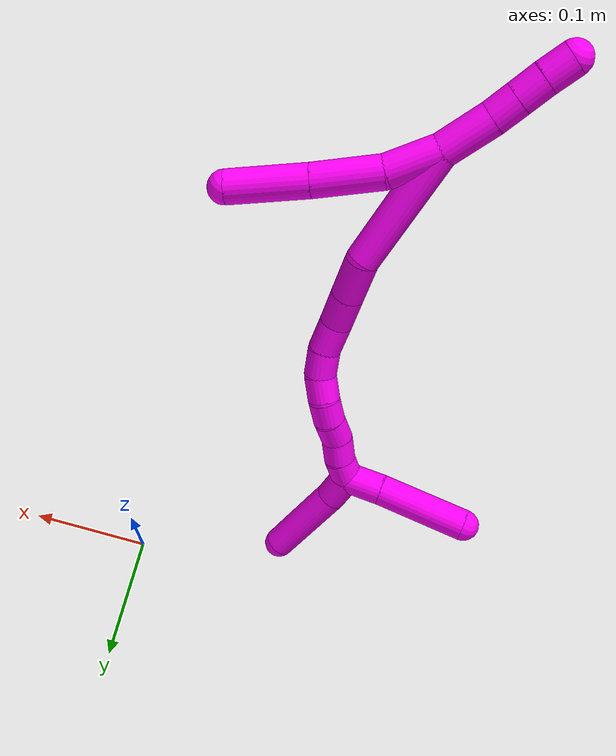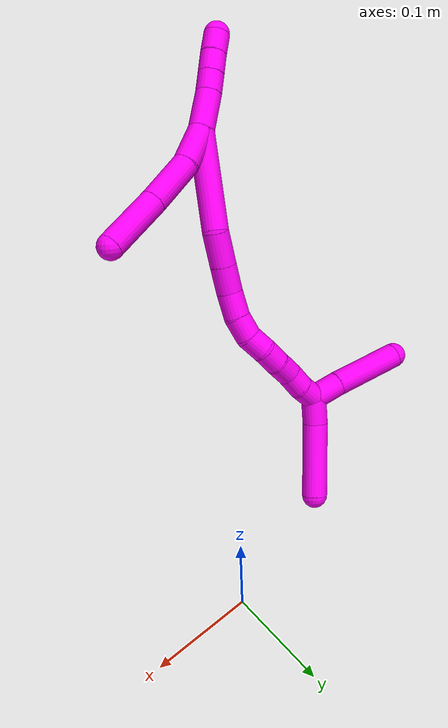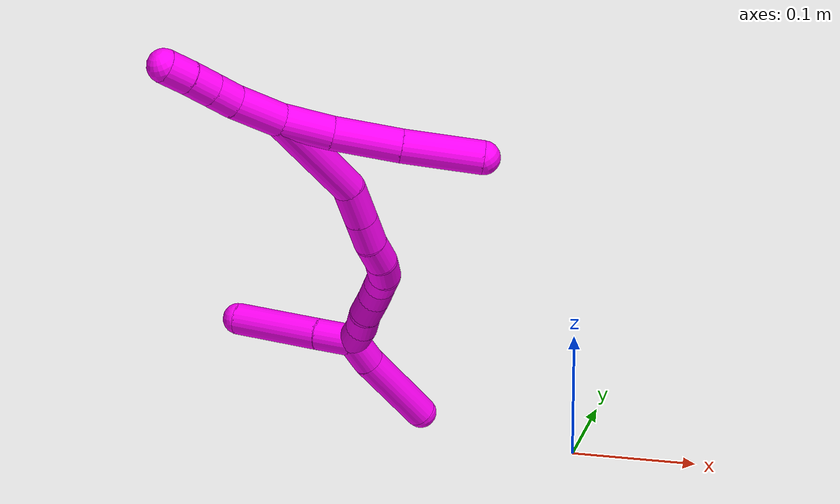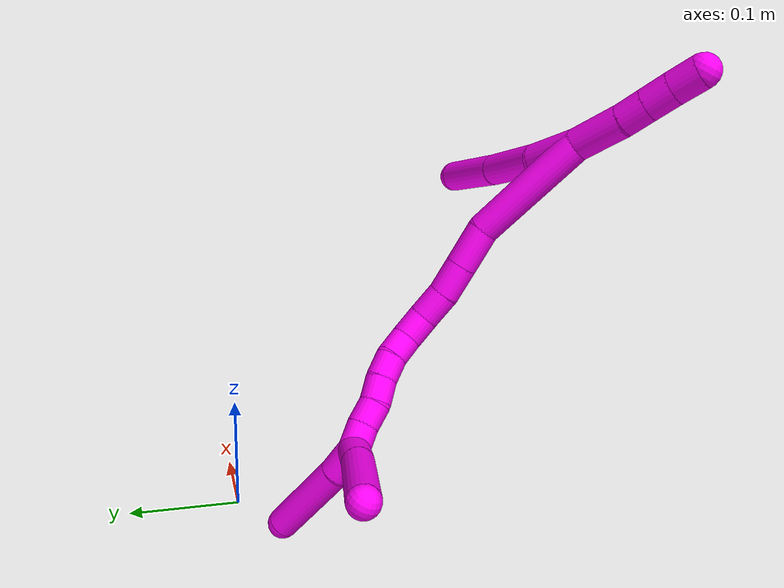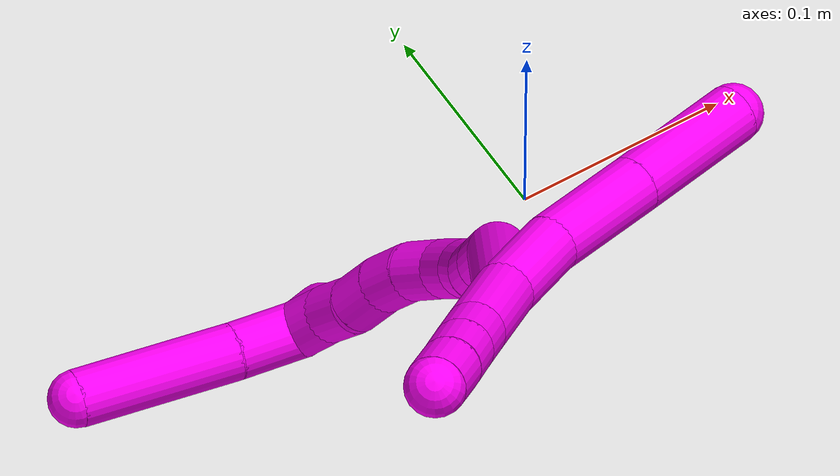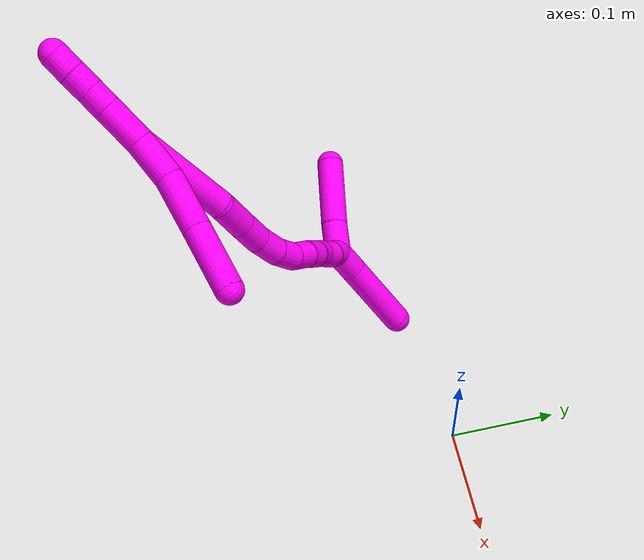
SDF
<sdf version="1.7">
 <world name="default">
  <model name="10">
   <static>0</static>
   <link name="10">
    <collision name="collision-cylinder-e_1_2_8">
     <pose>0.014163 0.003988 -0.012894 -2.84161 0.809479 -2.4633</pose>
     <geometry><cylinder><radius>0.0125</radius><length>0.039128</length></cylinder></geometry>
     <surface>
      <friction><ode><mu>1.16</mu><mu2>1.16</mu2><slip1>0</slip1><slip2>0</slip2></ode></friction>
      <contact><ode><kp>1e+06</kp><kd>1</kd><max_vel>0</max_vel><min_depth>0.001</min_depth></ode></contact>
     </surface>
    </collision>
    <visual name="visual-cylinder-e_1_2_8">
     <pose>0.014163 0.003988 -0.012894 -2.84161 0.809479 -2.4633</pose>
     <geometry><cylinder><radius>0.0125</radius><length>0.039128</length></cylinder></geometry>
     <material><ambient>1 0 0.964706 1</ambient></material>
    </visual>
    <collision name="collision-cylinder-e_2_8_9">
     <pose>0.050202 0.009612 -0.03893 -3.01778 1.02642 -2.9225</pose>
     <geometry><cylinder><radius>0.0125</radius><length>0.051144</length></cylinder></geometry>
     <surface>
      <friction><ode><mu>1.16</mu><mu2>1.16</mu2><slip1>0</slip1><slip2>0</slip2></ode></friction>
      <contact><ode><kp>1e+06</kp><kd>1</kd><max_vel>0</max_vel><min_depth>0.001</min_depth></ode></contact>
     </surface>
    </collision>
    <visual name="visual-cylinder-e_2_8_9">
     <pose>0.050202 0.009612 -0.03893 -3.01778 1.02642 -2.9225</pose>
     <geometry><cylinder><radius>0.0125</radius><length>0.051144</length></cylinder></geometry>
     <material><ambient>1 0 0.964706 1</ambient></material>
    </visual>
    <collision name="collision-cylinder-e_3_9_6">
     <pose>0.098362 0.013226 -0.06611 -3.00162 1.07618 -2.90775</pose>
     <geometry><cylinder><radius>0.0125</radius><length>0.059727</length></cylinder></geometry>
     <surface>
      <friction><ode><mu>1.16</mu><mu2>1.16</mu2><slip1>0</slip1><slip2>0</slip2></ode></friction>
      <contact><ode><kp>1e+06</kp><kd>1</kd><max_vel>0</max_vel><min_depth>0.001</min_depth></ode></contact>
     </surface>
    </collision>
    <visual name="visual-cylinder-e_3_9_6">
     <pose>0.098362 0.013226 -0.06611 -3.00162 1.07618 -2.90775</pose>
     <geometry><cylinder><radius>0.0125</radius><length>0.059727</length></cylinder></geometry>
     <material><ambient>1 0 0.964706 1</ambient></material>
    </visual>
    <collision name="collision-cylinder-e_1_2_10">
     <pose>-0.010663 -0.005025 0.015326 0.316849 -0.584166 -0.096003</pose>
     <geometry><cylinder><radius>0.0125</radius><length>0.038669</length></cylinder></geometry>
     <surface>
      <friction><ode><mu>1.16</mu><mu2>1.16</mu2><slip1>0</slip1><slip2>0</slip2></ode></friction>
      <contact><ode><kp>1e+06</kp><kd>1</kd><max_vel>0</max_vel><min_depth>0.001</min_depth></ode></contact>
     </surface>
    </collision>
    <visual name="visual-cylinder-e_1_2_10">
     <pose>-0.010663 -0.005025 0.015326 0.316849 -0.584166 -0.096003</pose>
     <geometry><cylinder><radius>0.0125</radius><length>0.038669</length></cylinder></geometry>
     <material><ambient>1 0 0.964706 1</ambient></material>
    </visual>
    <collision name="collision-cylinder-e_2_10_11">
     <pose>-0.026018 -0.012497 0.039181 0.279364 -0.486384 -0.069737</pose>
     <geometry><cylinder><radius>0.0125</radius><length>0.020077</length></cylinder></geometry>
     <surface>
      <friction><ode><mu>1.16</mu><mu2>1.16</mu2><slip1>0</slip1><slip2>0</slip2></ode></friction>
      <contact><ode><kp>1e+06</kp><kd>1</kd><max_vel>0</max_vel><min_depth>0.001</min_depth></ode></contact>
     </surface>
    </collision>
    <visual name="visual-cylinder-e_2_10_11">
     <pose>-0.026018 -0.012497 0.039181 0.279364 -0.486384 -0.069737</pose>
     <geometry><cylinder><radius>0.0125</radius><length>0.020077</length></cylinder></geometry>
     <material><ambient>1 0 0.964706 1</ambient></material>
    </visual>
    <collision name="collision-cylinder-e_3_11_12">
     <pose>-0.035444 -0.017502 0.056343 0.288059 -0.484063 -0.071579</pose>
     <geometry><cylinder><radius>0.0125</radius><length>0.020343</length></cylinder></geometry>
     <surface>
      <friction><ode><mu>1.16</mu><mu2>1.16</mu2><slip1>0</slip1><slip2>0</slip2></ode></friction>
      <contact><ode><kp>1e+06</kp><kd>1</kd><max_vel>0</max_vel><min_depth>0.001</min_depth></ode></contact>
     </surface>
    </collision>
    <visual name="visual-cylinder-e_3_11_12">
     <pose>-0.035444 -0.017502 0.056343 0.288059 -0.484063 -0.071579</pose>
     <geometry><cylinder><radius>0.0125</radius><length>0.020343</length></cylinder></geometry>
     <material><ambient>1 0 0.964706 1</ambient></material>
    </visual>
    <collision name="collision-cylinder-e_4_12_5">
     <pose>-0.045518 -0.022587 0.073602 0.284955 -0.536071 -0.078754</pose>
     <geometry><cylinder><radius>0.0125</radius><length>0.020911</length></cylinder></geometry>
     <surface>
      <friction><ode><mu>1.16</mu><mu2>1.16</mu2><slip1>0</slip1><slip2>0</slip2></ode></friction>
      <contact><ode><kp>1e+06</kp><kd>1</kd><max_vel>0</max_vel><min_depth>0.001</min_depth></ode></contact>
     </surface>
    </collision>
    <visual name="visual-cylinder-e_4_12_5">
     <pose>-0.045518 -0.022587 0.073602 0.284955 -0.536071 -0.078754</pose>
     <geometry><cylinder><radius>0.0125</radius><length>0.020911</length></cylinder></geometry>
     <material><ambient>1 0 0.964706 1</ambient></material>
    </visual>
    <collision name="collision-cylinder-e_1_2_13">
     <pose>0.007663 0.012995 -0.044263 -2.85603 0.164619 -1.04194</pose>
     <geometry><cylinder><radius>0.0125</radius><length>0.093526</length></cylinder></geometry>
     <surface>
      <friction><ode><mu>1.16</mu><mu2>1.16</mu2><slip1>0</slip1><slip2>0</slip2></ode></friction>
      <contact><ode><kp>1e+06</kp><kd>1</kd><max_vel>0</max_vel><min_depth>0.001</min_depth></ode></contact>
     </surface>
    </collision>
    <visual name="visual-cylinder-e_1_2_13">
     <pose>0.007663 0.012995 -0.044263 -2.85603 0.164619 -1.04194</pose>
     <geometry><cylinder><radius>0.0125</radius><length>0.093526</length></cylinder></geometry>
     <material><ambient>1 0 0.964706 1</ambient></material>
    </visual>
    <collision name="collision-cylinder-e_2_13_14">
     <pose>0.013825 0.027686 -0.104678 -3.03695 -0.092185 1.44419</pose>
     <geometry><cylinder><radius>0.0125</radius><length>0.032621</length></cylinder></geometry>
     <surface>
      <friction><ode><mu>1.16</mu><mu2>1.16</mu2><slip1>0</slip1><slip2>0</slip2></ode></friction>
      <contact><ode><kp>1e+06</kp><kd>1</kd><max_vel>0</max_vel><min_depth>0.001</min_depth></ode></contact>
     </surface>
    </collision>
    <visual name="visual-cylinder-e_2_13_14">
     <pose>0.013825 0.027686 -0.104678 -3.03695 -0.092185 1.44419</pose>
     <geometry><cylinder><radius>0.0125</radius><length>0.032621</length></cylinder></geometry>
     <material><ambient>1 0 0.964706 1</ambient></material>
    </visual>
    <collision name="collision-cylinder-e_3_14_15">
     <pose>0.011018 0.030891 -0.134031 -3.02779 -0.097971 1.4213</pose>
     <geometry><cylinder><radius>0.0125</radius><length>0.026702</length></cylinder></geometry>
     <surface>
      <friction><ode><mu>1.16</mu><mu2>1.16</mu2><slip1>0</slip1><slip2>0</slip2></ode></friction>
      <contact><ode><kp>1e+06</kp><kd>1</kd><max_vel>0</max_vel><min_depth>0.001</min_depth></ode></contact>
     </surface>
    </collision>
    <visual name="visual-cylinder-e_3_14_15">
     <pose>0.011018 0.030891 -0.134031 -3.02779 -0.097971 1.4213</pose>
     <geometry><cylinder><radius>0.0125</radius><length>0.026702</length></cylinder></geometry>
     <material><ambient>1 0 0.964706 1</ambient></material>
    </visual>
    <collision name="collision-cylinder-e_4_15_16">
     <pose>0.009159 0.035627 -0.159119 -2.87649 -0.044827 0.333152</pose>
     <geometry><cylinder><radius>0.0125</radius><length>0.02466</length></cylinder></geometry>
     <surface>
      <friction><ode><mu>1.16</mu><mu2>1.16</mu2><slip1>0</slip1><slip2>0</slip2></ode></friction>
      <contact><ode><kp>1e+06</kp><kd>1</kd><max_vel>0</max_vel><min_depth>0.001</min_depth></ode></contact>
     </surface>
    </collision>
    <visual name="visual-cylinder-e_4_15_16">
     <pose>0.009159 0.035627 -0.159119 -2.87649 -0.044827 0.333152</pose>
     <geometry><cylinder><radius>0.0125</radius><length>0.02466</length></cylinder></geometry>
     <material><ambient>1 0 0.964706 1</ambient></material>
    </visual>
    <collision name="collision-cylinder-e_5_16_17">
     <pose>0.005824 0.042767 -0.1809 -2.76499 -0.255872 1.18757</pose>
     <geometry><cylinder><radius>0.0125</radius><length>0.021994</length></cylinder></geometry>
     <surface>
      <friction><ode><mu>1.16</mu><mu2>1.16</mu2><slip1>0</slip1><slip2>0</slip2></ode></friction>
      <contact><ode><kp>1e+06</kp><kd>1</kd><max_vel>0</max_vel><min_depth>0.001</min_depth></ode></contact>
     </surface>
    </collision>
    <visual name="visual-cylinder-e_5_16_17">
     <pose>0.005824 0.042767 -0.1809 -2.76499 -0.255872 1.18757</pose>
     <geometry><cylinder><radius>0.0125</radius><length>0.021994</length></cylinder></geometry>
     <material><ambient>1 0 0.964706 1</ambient></material>
    </visual>
    <collision name="collision-cylinder-e_6_17_18">
     <pose>-0.002188 0.051273 -0.198299 -2.59251 -0.536133 1.54571</pose>
     <geometry><cylinder><radius>0.0125</radius><length>0.020472</length></cylinder></geometry>
     <surface>
      <friction><ode><mu>1.16</mu><mu2>1.16</mu2><slip1>0</slip1><slip2>0</slip2></ode></friction>
      <contact><ode><kp>1e+06</kp><kd>1</kd><max_vel>0</max_vel><min_depth>0.001</min_depth></ode></contact>
     </surface>
    </collision>
    <visual name="visual-cylinder-e_6_17_18">
     <pose>-0.002188 0.051273 -0.198299 -2.59251 -0.536133 1.54571</pose>
     <geometry><cylinder><radius>0.0125</radius><length>0.020472</length></cylinder></geometry>
     <material><ambient>1 0 0.964706 1</ambient></material>
    </visual>
    <collision name="collision-cylinder-e_7_18_19">
     <pose>-0.013206 0.058231 -0.213613 -2.8474 -0.61714 2.27135</pose>
     <geometry><cylinder><radius>0.0125</radius><length>0.020008</length></cylinder></geometry>
     <surface>
      <friction><ode><mu>1.16</mu><mu2>1.16</mu2><slip1>0</slip1><slip2>0</slip2></ode></friction>
      <contact><ode><kp>1e+06</kp><kd>1</kd><max_vel>0</max_vel><min_depth>0.001</min_depth></ode></contact>
     </surface>
    </collision>
    <visual name="visual-cylinder-e_7_18_19">
     <pose>-0.013206 0.058231 -0.213613 -2.8474 -0.61714 2.27135</pose>
     <geometry><cylinder><radius>0.0125</radius><length>0.020008</length></cylinder></geometry>
     <material><ambient>1 0 0.964706 1</ambient></material>
    </visual>
    <collision name="collision-cylinder-e_8_19_20">
     <pose>-0.02558 0.061529 -0.228891 -3.01738 -0.71872 2.81349</pose>
     <geometry><cylinder><radius>0.0125</radius><length>0.020002</length></cylinder></geometry>
     <surface>
      <friction><ode><mu>1.16</mu><mu2>1.16</mu2><slip1>0</slip1><slip2>0</slip2></ode></friction>
      <contact><ode><kp>1e+06</kp><kd>1</kd><max_vel>0</max_vel><min_depth>0.001</min_depth></ode></contact>
     </surface>
    </collision>
    <visual name="visual-cylinder-e_8_19_20">
     <pose>-0.02558 0.061529 -0.228891 -3.01738 -0.71872 2.81349</pose>
     <geometry><cylinder><radius>0.0125</radius><length>0.020002</length></cylinder></geometry>
     <material><ambient>1 0 0.964706 1</ambient></material>
    </visual>
    <collision name="collision-cylinder-e_9_20_21">
     <pose>-0.037182 0.065237 -0.244554 -2.81502 -0.52545 2.04234</pose>
     <geometry><cylinder><radius>0.0125</radius><length>0.02</length></cylinder></geometry>
     <surface>
      <friction><ode><mu>1.16</mu><mu2>1.16</mu2><slip1>0</slip1><slip2>0</slip2></ode></friction>
      <contact><ode><kp>1e+06</kp><kd>1</kd><max_vel>0</max_vel><min_depth>0.001</min_depth></ode></contact>
     </surface>
    </collision>
    <visual name="visual-cylinder-e_9_20_21">
     <pose>-0.037182 0.065237 -0.244554 -2.81502 -0.52545 2.04234</pose>
     <geometry><cylinder><radius>0.0125</radius><length>0.02</length></cylinder></geometry>
     <material><ambient>1 0 0.964706 1</ambient></material>
    </visual>
    <collision name="collision-cylinder-e_10_21_1">
     <pose>-0.048804 0.070029 -0.259989 -2.87004 -0.72103 2.44625</pose>
     <geometry><cylinder><radius>0.0125</radius><length>0.020015</length></cylinder></geometry>
     <surface>
      <friction><ode><mu>1.16</mu><mu2>1.16</mu2><slip1>0</slip1><slip2>0</slip2></ode></friction>
      <contact><ode><kp>1e+06</kp><kd>1</kd><max_vel>0</max_vel><min_depth>0.001</min_depth></ode></contact>
     </surface>
    </collision>
    <visual name="visual-cylinder-e_10_21_1">
     <pose>-0.048804 0.070029 -0.259989 -2.87004 -0.72103 2.44625</pose>
     <geometry><cylinder><radius>0.0125</radius><length>0.020015</length></cylinder></geometry>
     <material><ambient>1 0 0.964706 1</ambient></material>
    </visual>
    <collision name="collision-cylinder-e_1_1_22">
     <pose>-0.053918 0.07361 -0.280186 -3.02134 0.113943 -1.51677</pose>
     <geometry><cylinder><radius>0.0125</radius><length>0.026269</length></cylinder></geometry>
     <surface>
      <friction><ode><mu>1.16</mu><mu2>1.16</mu2><slip1>0</slip1><slip2>0</slip2></ode></friction>
      <contact><ode><kp>1e+06</kp><kd>1</kd><max_vel>0</max_vel><min_depth>0.001</min_depth></ode></contact>
     </surface>
    </collision>
    <visual name="visual-cylinder-e_1_1_22">
     <pose>-0.053918 0.07361 -0.280186 -3.02134 0.113943 -1.51677</pose>
     <geometry><cylinder><radius>0.0125</radius><length>0.026269</length></cylinder></geometry>
     <material><ambient>1 0 0.964706 1</ambient></material>
    </visual>
    <collision name="collision-cylinder-e_2_22_4">
     <pose>-0.043704 0.080439 -0.328572 -2.99411 0.238805 -2.03773</pose>
     <geometry><cylinder><radius>0.0125</radius><length>0.073731</length></cylinder></geometry>
     <surface>
      <friction><ode><mu>1.16</mu><mu2>1.16</mu2><slip1>0</slip1><slip2>0</slip2></ode></friction>
      <contact><ode><kp>1e+06</kp><kd>1</kd><max_vel>0</max_vel><min_depth>0.001</min_depth></ode></contact>
     </surface>
    </collision>
    <visual name="visual-cylinder-e_2_22_4">
     <pose>-0.043704 0.080439 -0.328572 -2.99411 0.238805 -2.03773</pose>
     <geometry><cylinder><radius>0.0125</radius><length>0.073731</length></cylinder></geometry>
     <material><ambient>1 0 0.964706 1</ambient></material>
    </visual>
    <collision name="collision-cylinder-e_1_1_23">
     <pose>-0.069153 0.07559 -0.263546 -0.765995 -1.21457 0.545952</pose>
     <geometry><cylinder><radius>0.0125</radius><length>0.029325</length></cylinder></geometry>
     <surface>
      <friction><ode><mu>1.16</mu><mu2>1.16</mu2><slip1>0</slip1><slip2>0</slip2></ode></friction>
      <contact><ode><kp>1e+06</kp><kd>1</kd><max_vel>0</max_vel><min_depth>0.001</min_depth></ode></contact>
     </surface>
    </collision>
    <visual name="visual-cylinder-e_1_1_23">
     <pose>-0.069153 0.07559 -0.263546 -0.765995 -1.21457 0.545952</pose>
     <geometry><cylinder><radius>0.0125</radius><length>0.029325</length></cylinder></geometry>
     <material><ambient>1 0 0.964706 1</ambient></material>
    </visual>
    <collision name="collision-cylinder-e_2_23_3">
     <pose>-0.115885 0.089229 -0.252212 -0.922401 -1.20424 0.658214</pose>
     <geometry><cylinder><radius>0.0125</radius><length>0.070675</length></cylinder></geometry>
     <surface>
      <friction><ode><mu>1.16</mu><mu2>1.16</mu2><slip1>0</slip1><slip2>0</slip2></ode></friction>
      <contact><ode><kp>1e+06</kp><kd>1</kd><max_vel>0</max_vel><min_depth>0.001</min_depth></ode></contact>
     </surface>
    </collision>
    <visual name="visual-cylinder-e_2_23_3">
     <pose>-0.115885 0.089229 -0.252212 -0.922401 -1.20424 0.658214</pose>
     <geometry><cylinder><radius>0.0125</radius><length>0.070675</length></cylinder></geometry>
     <material><ambient>1 0 0.964706 1</ambient></material>
    </visual>
    <collision name="collision-sphere-3">
     <pose>-0.148875 0.099324 -0.244564 0 -0 0</pose>
     <geometry><sphere><radius>0.0125</radius></sphere></geometry>
     <surface>
      <friction><ode><mu>1.16</mu><mu2>1.16</mu2><slip1>0</slip1><slip2>0</slip2></ode></friction>
      <contact><ode><kp>1e+06</kp><kd>1</kd><max_vel>0</max_vel><min_depth>0.001</min_depth></ode></contact>
     </surface>
    </collision>
    <visual name="visual-sphere-3">
     <pose>-0.148875 0.099324 -0.244564 0 -0 0</pose>
     <geometry><sphere><radius>0.0125</radius></sphere></geometry>
     <material><ambient>1 0 0.964706 1</ambient></material>
    </visual>
    <collision name="collision-sphere-23">
     <pose>-0.082895 0.079135 -0.259861 0 -0 0</pose>
     <geometry><sphere><radius>0.0125</radius></sphere></geometry>
     <surface>
      <friction><ode><mu>1.16</mu><mu2>1.16</mu2><slip1>0</slip1><slip2>0</slip2></ode></friction>
      <contact><ode><kp>1e+06</kp><kd>1</kd><max_vel>0</max_vel><min_depth>0.001</min_depth></ode></contact>
     </surface>
    </collision>
    <visual name="visual-sphere-23">
     <pose>-0.082895 0.079135 -0.259861 0 -0 0</pose>
     <geometry><sphere><radius>0.0125</radius></sphere></geometry>
     <material><ambient>1 0 0.964706 1</ambient></material>
    </visual>
    <collision name="collision-sphere-4">
     <pose>-0.034984 0.085703 -0.364002 0 -0 0</pose>
     <geometry><sphere><radius>0.0125</radius></sphere></geometry>
     <surface>
      <friction><ode><mu>1.16</mu><mu2>1.16</mu2><slip1>0</slip1><slip2>0</slip2></ode></friction>
      <contact><ode><kp>1e+06</kp><kd>1</kd><max_vel>0</max_vel><min_depth>0.001</min_depth></ode></contact>
     </surface>
    </collision>
    <visual name="visual-sphere-4">
     <pose>-0.034984 0.085703 -0.364002 0 -0 0</pose>
     <geometry><sphere><radius>0.0125</radius></sphere></geometry>
     <material><ambient>1 0 0.964706 1</ambient></material>
    </visual>
    <collision name="collision-sphere-22">
     <pose>-0.052424 0.075176 -0.293141 0 -0 0</pose>
     <geometry><sphere><radius>0.0125</radius></sphere></geometry>
     <surface>
      <friction><ode><mu>1.16</mu><mu2>1.16</mu2><slip1>0</slip1><slip2>0</slip2></ode></friction>
      <contact><ode><kp>1e+06</kp><kd>1</kd><max_vel>0</max_vel><min_depth>0.001</min_depth></ode></contact>
     </surface>
    </collision>
    <visual name="visual-sphere-22">
     <pose>-0.052424 0.075176 -0.293141 0 -0 0</pose>
     <geometry><sphere><radius>0.0125</radius></sphere></geometry>
     <material><ambient>1 0 0.964706 1</ambient></material>
    </visual>
    <collision name="collision-sphere-1">
     <pose>-0.055411 0.072045 -0.267231 0 -0 0</pose>
     <geometry><sphere><radius>0.0125</radius></sphere></geometry>
     <surface>
      <friction><ode><mu>1.16</mu><mu2>1.16</mu2><slip1>0</slip1><slip2>0</slip2></ode></friction>
      <contact><ode><kp>1e+06</kp><kd>1</kd><max_vel>0</max_vel><min_depth>0.001</min_depth></ode></contact>
     </surface>
    </collision>
    <visual name="visual-sphere-1">
     <pose>-0.055411 0.072045 -0.267231 0 -0 0</pose>
     <geometry><sphere><radius>0.0125</radius></sphere></geometry>
     <material><ambient>1 0 0.964706 1</ambient></material>
    </visual>
    <collision name="collision-sphere-21">
     <pose>-0.042198 0.068012 -0.252748 0 -0 0</pose>
     <geometry><sphere><radius>0.0125</radius></sphere></geometry>
     <surface>
      <friction><ode><mu>1.16</mu><mu2>1.16</mu2><slip1>0</slip1><slip2>0</slip2></ode></friction>
      <contact><ode><kp>1e+06</kp><kd>1</kd><max_vel>0</max_vel><min_depth>0.001</min_depth></ode></contact>
     </surface>
    </collision>
    <visual name="visual-sphere-21">
     <pose>-0.042198 0.068012 -0.252748 0 -0 0</pose>
     <geometry><sphere><radius>0.0125</radius></sphere></geometry>
     <material><ambient>1 0 0.964706 1</ambient></material>
    </visual>
    <collision name="collision-sphere-11">
     <pose>-0.030711 -0.014944 0.047711 0 -0 0</pose>
     <geometry><sphere><radius>0.0125</radius></sphere></geometry>
     <surface>
      <friction><ode><mu>1.16</mu><mu2>1.16</mu2><slip1>0</slip1><slip2>0</slip2></ode></friction>
      <contact><ode><kp>1e+06</kp><kd>1</kd><max_vel>0</max_vel><min_depth>0.001</min_depth></ode></contact>
     </surface>
    </collision>
    <visual name="visual-sphere-11">
     <pose>-0.030711 -0.014944 0.047711 0 -0 0</pose>
     <geometry><sphere><radius>0.0125</radius></sphere></geometry>
     <material><ambient>1 0 0.964706 1</ambient></material>
    </visual>
    <collision name="collision-sphere-10">
     <pose>-0.021326 -0.01005 0.030651 0 -0 0</pose>
     <geometry><sphere><radius>0.0125</radius></sphere></geometry>
     <surface>
      <friction><ode><mu>1.16</mu><mu2>1.16</mu2><slip1>0</slip1><slip2>0</slip2></ode></friction>
      <contact><ode><kp>1e+06</kp><kd>1</kd><max_vel>0</max_vel><min_depth>0.001</min_depth></ode></contact>
     </surface>
    </collision>
    <visual name="visual-sphere-10">
     <pose>-0.021326 -0.01005 0.030651 0 -0 0</pose>
     <geometry><sphere><radius>0.0125</radius></sphere></geometry>
     <material><ambient>1 0 0.964706 1</ambient></material>
    </visual>
    <collision name="collision-sphere-6">
     <pose>0.124647 0.015203 -0.080147 0 -0 0</pose>
     <geometry><sphere><radius>0.0125</radius></sphere></geometry>
     <surface>
      <friction><ode><mu>1.16</mu><mu2>1.16</mu2><slip1>0</slip1><slip2>0</slip2></ode></friction>
      <contact><ode><kp>1e+06</kp><kd>1</kd><max_vel>0</max_vel><min_depth>0.001</min_depth></ode></contact>
     </surface>
    </collision>
    <visual name="visual-sphere-6">
     <pose>0.124647 0.015203 -0.080147 0 -0 0</pose>
     <geometry><sphere><radius>0.0125</radius></sphere></geometry>
     <material><ambient>1 0 0.964706 1</ambient></material>
    </visual>
    <collision name="collision-sphere-9">
     <pose>0.072078 0.011248 -0.052072 0 -0 0</pose>
     <geometry><sphere><radius>0.0125</radius></sphere></geometry>
     <surface>
      <friction><ode><mu>1.16</mu><mu2>1.16</mu2><slip1>0</slip1><slip2>0</slip2></ode></friction>
      <contact><ode><kp>1e+06</kp><kd>1</kd><max_vel>0</max_vel><min_depth>0.001</min_depth></ode></contact>
     </surface>
    </collision>
    <visual name="visual-sphere-9">
     <pose>0.072078 0.011248 -0.052072 0 -0 0</pose>
     <geometry><sphere><radius>0.0125</radius></sphere></geometry>
     <material><ambient>1 0 0.964706 1</ambient></material>
    </visual>
    <collision name="collision-sphere-2">
     <geometry><sphere><radius>0.0125</radius></sphere></geometry>
     <surface>
      <friction><ode><mu>1.16</mu><mu2>1.16</mu2><slip1>0</slip1><slip2>0</slip2></ode></friction>
      <contact><ode><kp>1e+06</kp><kd>1</kd><max_vel>0</max_vel><min_depth>0.001</min_depth></ode></contact>
     </surface>
    </collision>
    <visual name="visual-sphere-2">
     <geometry><sphere><radius>0.0125</radius></sphere></geometry>
     <material><ambient>1 0 0.964706 1</ambient></material>
    </visual>
    <collision name="collision-sphere-19">
     <pose>-0.018995 0.060597 -0.221421 0 -0 0</pose>
     <geometry><sphere><radius>0.0125</radius></sphere></geometry>
     <surface>
      <friction><ode><mu>1.16</mu><mu2>1.16</mu2><slip1>0</slip1><slip2>0</slip2></ode></friction>
      <contact><ode><kp>1e+06</kp><kd>1</kd><max_vel>0</max_vel><min_depth>0.001</min_depth></ode></contact>
     </surface>
    </collision>
    <visual name="visual-sphere-19">
     <pose>-0.018995 0.060597 -0.221421 0 -0 0</pose>
     <geometry><sphere><radius>0.0125</radius></sphere></geometry>
     <material><ambient>1 0 0.964706 1</ambient></material>
    </visual>
    <collision name="collision-sphere-8">
     <pose>0.028326 0.007977 -0.025788 0 -0 0</pose>
     <geometry><sphere><radius>0.0125</radius></sphere></geometry>
     <surface>
      <friction><ode><mu>1.16</mu><mu2>1.16</mu2><slip1>0</slip1><slip2>0</slip2></ode></friction>
      <contact><ode><kp>1e+06</kp><kd>1</kd><max_vel>0</max_vel><min_depth>0.001</min_depth></ode></contact>
     </surface>
    </collision>
    <visual name="visual-sphere-8">
     <pose>0.028326 0.007977 -0.025788 0 -0 0</pose>
     <geometry><sphere><radius>0.0125</radius></sphere></geometry>
     <material><ambient>1 0 0.964706 1</ambient></material>
    </visual>
    <collision name="collision-sphere-12">
     <pose>-0.040178 -0.02006 0.064975 0 -0 0</pose>
     <geometry><sphere><radius>0.0125</radius></sphere></geometry>
     <surface>
      <friction><ode><mu>1.16</mu><mu2>1.16</mu2><slip1>0</slip1><slip2>0</slip2></ode></friction>
      <contact><ode><kp>1e+06</kp><kd>1</kd><max_vel>0</max_vel><min_depth>0.001</min_depth></ode></contact>
     </surface>
    </collision>
    <visual name="visual-sphere-12">
     <pose>-0.040178 -0.02006 0.064975 0 -0 0</pose>
     <geometry><sphere><radius>0.0125</radius></sphere></geometry>
     <material><ambient>1 0 0.964706 1</ambient></material>
    </visual>
    <collision name="collision-sphere-5">
     <pose>-0.050859 -0.025113 0.082228 0 -0 0</pose>
     <geometry><sphere><radius>0.0125</radius></sphere></geometry>
     <surface>
      <friction><ode><mu>1.16</mu><mu2>1.16</mu2><slip1>0</slip1><slip2>0</slip2></ode></friction>
      <contact><ode><kp>1e+06</kp><kd>1</kd><max_vel>0</max_vel><min_depth>0.001</min_depth></ode></contact>
     </surface>
    </collision>
    <visual name="visual-sphere-5">
     <pose>-0.050859 -0.025113 0.082228 0 -0 0</pose>
     <geometry><sphere><radius>0.0125</radius></sphere></geometry>
     <material><ambient>1 0 0.964706 1</ambient></material>
    </visual>
    <collision name="collision-sphere-13">
     <pose>0.015327 0.02599 -0.088525 0 -0 0</pose>
     <geometry><sphere><radius>0.0125</radius></sphere></geometry>
     <surface>
      <friction><ode><mu>1.16</mu><mu2>1.16</mu2><slip1>0</slip1><slip2>0</slip2></ode></friction>
      <contact><ode><kp>1e+06</kp><kd>1</kd><max_vel>0</max_vel><min_depth>0.001</min_depth></ode></contact>
     </surface>
    </collision>
    <visual name="visual-sphere-13">
     <pose>0.015327 0.02599 -0.088525 0 -0 0</pose>
     <geometry><sphere><radius>0.0125</radius></sphere></geometry>
     <material><ambient>1 0 0.964706 1</ambient></material>
    </visual>
    <collision name="collision-sphere-14">
     <pose>0.012324 0.029382 -0.12083 0 -0 0</pose>
     <geometry><sphere><radius>0.0125</radius></sphere></geometry>
     <surface>
      <friction><ode><mu>1.16</mu><mu2>1.16</mu2><slip1>0</slip1><slip2>0</slip2></ode></friction>
      <contact><ode><kp>1e+06</kp><kd>1</kd><max_vel>0</max_vel><min_depth>0.001</min_depth></ode></contact>
     </surface>
    </collision>
    <visual name="visual-sphere-14">
     <pose>0.012324 0.029382 -0.12083 0 -0 0</pose>
     <geometry><sphere><radius>0.0125</radius></sphere></geometry>
     <material><ambient>1 0 0.964706 1</ambient></material>
    </visual>
    <collision name="collision-sphere-15">
     <pose>0.009712 0.0324 -0.147232 0 -0 0</pose>
     <geometry><sphere><radius>0.0125</radius></sphere></geometry>
     <surface>
      <friction><ode><mu>1.16</mu><mu2>1.16</mu2><slip1>0</slip1><slip2>0</slip2></ode></friction>
      <contact><ode><kp>1e+06</kp><kd>1</kd><max_vel>0</max_vel><min_depth>0.001</min_depth></ode></contact>
     </surface>
    </collision>
    <visual name="visual-sphere-15">
     <pose>0.009712 0.0324 -0.147232 0 -0 0</pose>
     <geometry><sphere><radius>0.0125</radius></sphere></geometry>
     <material><ambient>1 0 0.964706 1</ambient></material>
    </visual>
    <collision name="collision-sphere-16">
     <pose>0.008607 0.038855 -0.171006 0 -0 0</pose>
     <geometry><sphere><radius>0.0125</radius></sphere></geometry>
     <surface>
      <friction><ode><mu>1.16</mu><mu2>1.16</mu2><slip1>0</slip1><slip2>0</slip2></ode></friction>
      <contact><ode><kp>1e+06</kp><kd>1</kd><max_vel>0</max_vel><min_depth>0.001</min_depth></ode></contact>
     </surface>
    </collision>
    <visual name="visual-sphere-16">
     <pose>0.008607 0.038855 -0.171006 0 -0 0</pose>
     <geometry><sphere><radius>0.0125</radius></sphere></geometry>
     <material><ambient>1 0 0.964706 1</ambient></material>
    </visual>
    <collision name="collision-sphere-17">
     <pose>0.00304 0.04668 -0.190793 0 -0 0</pose>
     <geometry><sphere><radius>0.0125</radius></sphere></geometry>
     <surface>
      <friction><ode><mu>1.16</mu><mu2>1.16</mu2><slip1>0</slip1><slip2>0</slip2></ode></friction>
      <contact><ode><kp>1e+06</kp><kd>1</kd><max_vel>0</max_vel><min_depth>0.001</min_depth></ode></contact>
     </surface>
    </collision>
    <visual name="visual-sphere-17">
     <pose>0.00304 0.04668 -0.190793 0 -0 0</pose>
     <geometry><sphere><radius>0.0125</radius></sphere></geometry>
     <material><ambient>1 0 0.964706 1</ambient></material>
    </visual>
    <collision name="collision-sphere-18">
     <pose>-0.007417 0.055865 -0.205805 0 -0 0</pose>
     <geometry><sphere><radius>0.0125</radius></sphere></geometry>
     <surface>
      <friction><ode><mu>1.16</mu><mu2>1.16</mu2><slip1>0</slip1><slip2>0</slip2></ode></friction>
      <contact><ode><kp>1e+06</kp><kd>1</kd><max_vel>0</max_vel><min_depth>0.001</min_depth></ode></contact>
     </surface>
    </collision>
    <visual name="visual-sphere-18">
     <pose>-0.007417 0.055865 -0.205805 0 -0 0</pose>
     <geometry><sphere><radius>0.0125</radius></sphere></geometry>
     <material><ambient>1 0 0.964706 1</ambient></material>
    </visual>
    <collision name="collision-sphere-20">
     <pose>-0.032166 0.062462 -0.23636 0 -0 0</pose>
     <geometry><sphere><radius>0.0125</radius></sphere></geometry>
     <surface>
      <friction><ode><mu>1.16</mu><mu2>1.16</mu2><slip1>0</slip1><slip2>0</slip2></ode></friction>
      <contact><ode><kp>1e+06</kp><kd>1</kd><max_vel>0</max_vel><min_depth>0.001</min_depth></ode></contact>
     </surface>
    </collision>
    <visual name="visual-sphere-20">
     <pose>-0.032166 0.062462 -0.23636 0 -0 0</pose>
     <geometry><sphere><radius>0.0125</radius></sphere></geometry>
     <material><ambient>1 0 0.964706 1</ambient></material>
    </visual>
    <inertial>
     <pose>-0.012257 0.036621 -0.135416 0 -0 0</pose>
     <mass>0.75</mass>
     <inertia><ixx>-6.5e-05</ixx><ixy>0</ixy><ixz>0</ixz><iyy>-4e-06</iyy><iyz>0</iyz><izz>-7.7e-05</izz></inertia>
    </inertial>
   </link>
   <pose>-0.166925 -0.244807 0.336836 0.389563 -0.277884 0.011499</pose>
  </model>
 </world>
</sdf>
